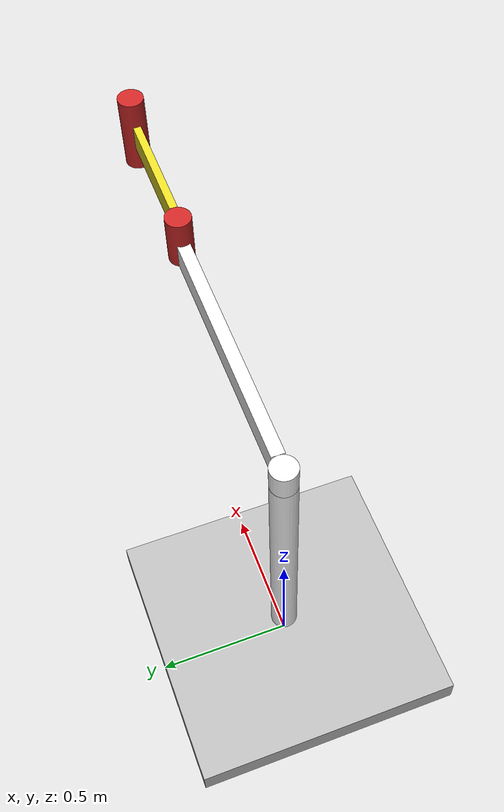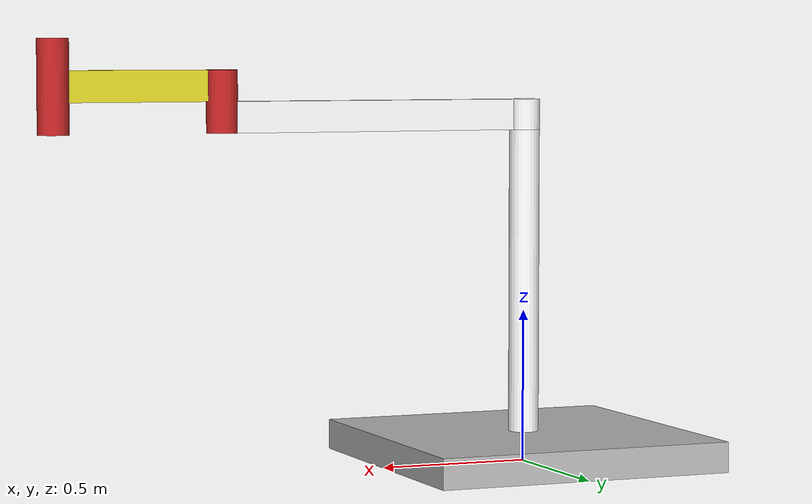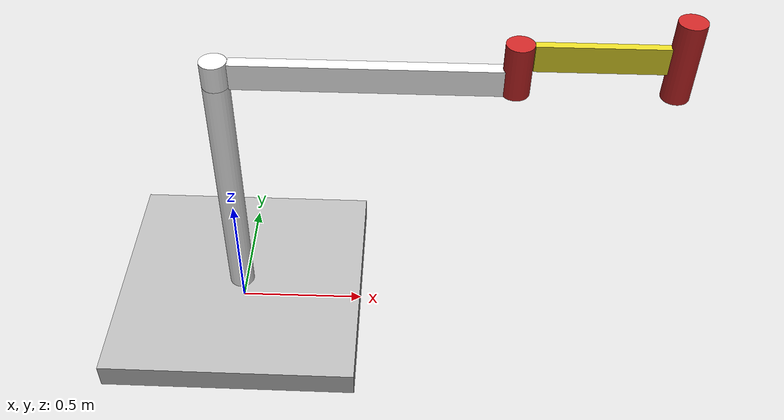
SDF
<?xml version="1.0" ?>
<sdf version="1.5">
  <model name="dxsim-two">
    <link name="arm_base">
      <inertial>
        <pose>0 0 0.00099 0 0 0</pose>
        <inertia>
          <ixx>1.11</ixx>
          <ixy>0</ixy>
          <ixz>0</ixz>
          <iyy>100.11</iyy>
          <iyz>0</iyz>
          <izz>1.01</izz>
        </inertia>
        <mass>101.0</mass>
      </inertial>
      <collision name="arm_base_geom">
        <pose>0 0 0.05 0 0 0</pose>
        <geometry>
          <box>
            <size>1.0 1.0 0.1</size>
          </box>
        </geometry>
      </collision>
      <visual name="arm_base_geom_visual">
        <pose>0 0 0.05 0 0 0</pose>
        <geometry>
          <box>
            <size>1.0 1.0 0.1</size>
          </box>
        </geometry>
        <material>
          <script>
            <ambient>0.2 0.2 0.8 1</ambient>
            <diffuse>1.0 1.0 1.0 1</diffuse>
          </script>
        </material>
      </visual>
      <collision name="arm_base_geom_arm_trunk">
        <pose>0 0 0.6 0 0 0</pose>
        <geometry>
          <cylinder>
            <radius>0.05</radius>
            <length>1.0</length>
          </cylinder>
        </geometry>
      </collision>
      <visual name="arm_base_geom_arm_trunk_visual">
        <pose>0 0 0.6 0 0 0</pose>
        <geometry>
          <cylinder>
            <radius>0.05</radius>
            <length>1.0</length>
          </cylinder>
        </geometry>
        <material>
          <ambient>0.8 0.2 0.2 1</ambient>
          <diffuse>1.0 1.0 1.0 1</diffuse>
        </material>
      </visual>
    </link>
    <link name="arm_shoulder_pan">
      <pose>0 0 1.1 0 0 0</pose>
      <inertial>
        <pose>0.045455 0 0 0 0 0</pose>
        <inertia>
          <ixx>0.011</ixx>
          <ixy>0</ixy>
          <ixz>0</ixz>
          <iyy>0.0225</iyy>
          <iyz>0</iyz>
          <izz>0.0135</izz>
        </inertia>
        <mass>1.1</mass>
      </inertial>
      <collision name="arm_shoulder_pan_geom">
        <pose>0 0 0.05 0 0 0</pose>
        <geometry>
          <cylinder>
            <radius>0.05</radius>
            <length>0.1</length>
          </cylinder>
        </geometry>
      </collision>
      <visual name="arm_shoulder_pan_geom_visual">
        <pose>0 0 0.05 0 0 0</pose>
        <geometry>
          <cylinder>
            <radius>0.05</radius>
            <length>0.1</length>
          </cylinder>
        </geometry>
        <material>
          <ambient>0.8 0.8 0.2 1</ambient>
          <diffuse>1.0 1.0 1.0 1</diffuse>
        </material>
      </visual>
      <collision name="arm_shoulder_pan_geom_arm_shoulder">
        <pose>0.55 0 0.05 0 0 0</pose>
        <geometry>
          <box>
            <size>1.0 0.05 0.1</size>
          </box>
        </geometry>
      </collision>
      <visual name="arm_shoulder_pan_geom_arm_shoulder_visual">
        <pose>0.55 0 0.05 0 0 0</pose>
        <geometry>
          <box>
            <size>1.0 0.05 0.1</size>
          </box>
        </geometry>
        <material>
          <ambient>0.8 0.8 0.2 1</ambient>
          <diffuse>1.0 1.0 1.0 1</diffuse>
        </material>
      </visual>
    </link>
    <link name="arm_elbow_pan">
      <pose>1.05 0 1.1 0 0 0</pose>
      <inertial>
        <pose>0.0875 0 0.083333 0 0 0</pose>
        <inertia>
          <ixx>0.031</ixx>
          <ixy>0</ixy>
          <ixz>0.005</ixz>
          <iyy>0.07275</iyy>
          <iyz>0</iyz>
          <izz>0.04475</izz>
        </inertia>
        <mass>1.2</mass>
      </inertial>
      <collision name="arm_elbow_pan_geom">
        <pose>0 0 0.1 0 0 0</pose>
        <geometry>
          <cylinder>
            <radius>0.05</radius>
            <length>0.2</length>
          </cylinder>
        </geometry>
      </collision>
      <visual name="arm_elbow_pan_geom_visual">
        <pose>0 0 0.1 0 0 0</pose>
        <geometry>
          <cylinder>
            <radius>0.05</radius>
            <length>0.2</length>
          </cylinder>
        </geometry>
        <material>
          <script>
            <uri>file://media/materials/scripts/gazebo.material</uri>
            <name>Gazebo/Red</name>
          </script>
        </material>
      </visual>
      <collision name="arm_elbow_pan_geom_arm_elbow">
        <pose>0.3 0 0.15 0 0 0</pose>
        <geometry>
          <box>
            <size>0.5 0.03 0.1</size>
          </box>
        </geometry>
      </collision>
      <visual name="arm_elbow_pan_geom_arm_elbow_visual">
        <pose>0.3 0 0.15 0 0 0</pose>
        <geometry>
          <box>
            <size>0.5 0.03 0.1</size>
          </box>
        </geometry>
        <material>
          <script>
            <uri>file://media/materials/scripts/gazebo.material</uri>
            <name>Gazebo/Yellow</name>
          </script>
        </material>
      </visual>
      <collision name="arm_elbow_pan_geom_arm_wrist">
        <pose>0.55 0 0.15 0 0 0</pose>
        <geometry>
          <cylinder>
            <radius>0.05</radius>
            <length>0.3</length>
          </cylinder>
        </geometry>
      </collision>
      <visual name="arm_elbow_pan_geom_arm_wrist_visual">
        <pose>0.55 0 0.15 0 0 0</pose>
        <geometry>
          <cylinder>
            <radius>0.05</radius>
            <length>0.3</length>
          </cylinder>
        </geometry>
        <material>
          <script>
            <uri>file://media/materials/scripts/gazebo.material</uri>
            <name>Gazebo/Red</name>
          </script>
        </material>
      </visual>
    </link>
    <joint name="arm_shoulder_pan_joint" type="revolute">
      <parent>arm_base</parent>
      <child>arm_shoulder_pan</child>
      <axis>
        <dynamics>
          <damping>1.000000</damping>
          <friction>0.000000</friction>
        </dynamics>
        <xyz>0 0 1</xyz>
        <use_parent_model_frame>true</use_parent_model_frame>
      </axis>
    </joint>
    <joint name="arm_elbow_pan_joint" type="revolute">
      <parent>arm_shoulder_pan</parent>
      <child>arm_elbow_pan</child>
      <axis>
        <dynamics>
          <damping>1.000000</damping>
          <friction>0.000000</friction>
        </dynamics>
        <xyz>0 0 1</xyz>
        <use_parent_model_frame>true</use_parent_model_frame>
      </axis>
    </joint>

    <joint name="arm_base_joint" type="fixed">
      <parent>world</parent>
      <child>arm_base</child>
    </joint>

    <plugin name="dxsim" filename="dxsim-gazebo.so">
      <pty>/tmp/pty-dxsim-two</pty>
      <motors>
        <motor>
          <joint spin="ccw">arm_shoulder_pan_joint</joint>
          <model>MX64T</model>
          <eeprom>/tmp/dxsim-two-id2</eeprom>
          <id>2</id>
          <noise>0</noise>
          <debug>0</debug>
        </motor>
        <motor>
          <joint spin="ccw">arm_elbow_pan_joint</joint>
          <eeprom>/tmp/dxsim-two-id3</eeprom>
          <id>3</id>
          <noise>0</noise>
          <debug>0</debug>
        </motor>
      </motors>
    </plugin>
  </model>
</sdf>
